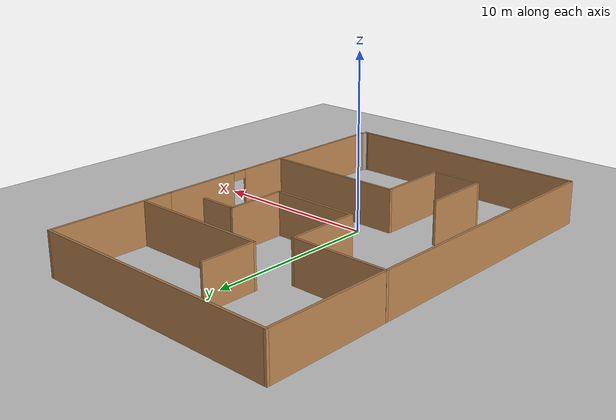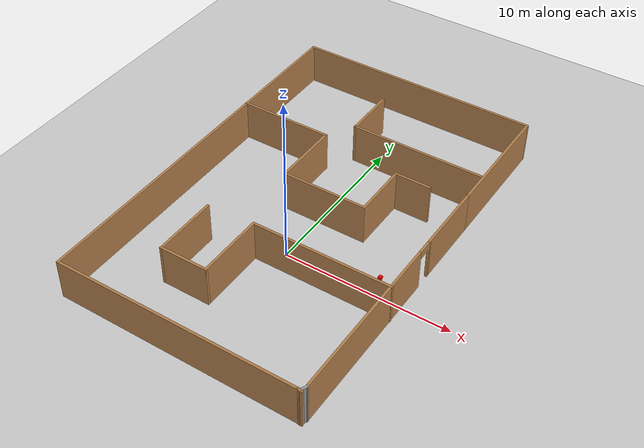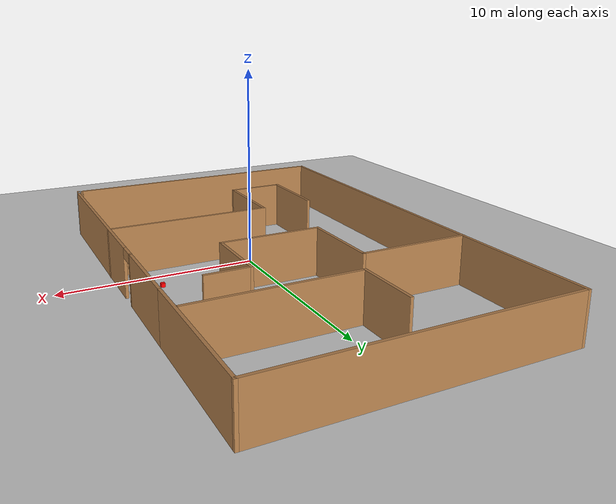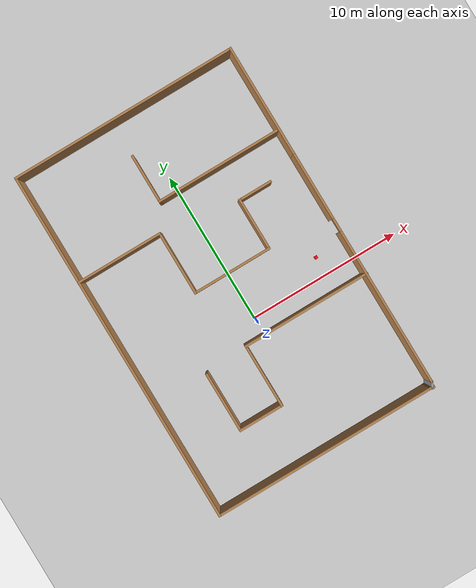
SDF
<sdf version="1.7">
 <world name="default">
  <light name="sun" type="directional">
   <pose>0 0 10 0 -0 0</pose>
   <diffuse>0.8 0.8 0.8 1</diffuse>
   <specular>0.2 0.2 0.2 1</specular>
   <attenuation>
    <range>1000</range>
    <constant>0.9</constant>
    <linear>0.01</linear>
    <quadratic>0.001</quadratic>
   </attenuation>
   <direction>-0.5 0.1 -0.9</direction>
   <spot><inner_angle>0</inner_angle><outer_angle>0</outer_angle><falloff>0</falloff></spot>
  </light>
  <model name="ground_plane">
   <static>1</static>
   <link name="link">
    <collision name="collision">
     <geometry><plane><normal>0 0 1</normal><size>100 100</size></plane></geometry>
     <surface><friction><ode><mu>100</mu><mu2>50</mu2></ode></friction></surface>
    </collision>
    <visual name="visual">
     <cast_shadows>0</cast_shadows>
     <geometry><plane><normal>0 0 1</normal><size>100 100</size></plane></geometry>
     <material>
      <script><uri>file://media/materials/scripts/gazebo.material</uri><name>Gazebo/Grey</name></script>
     </material>
    </visual>
   </link>
  </model>
  <gravity>0 0 -9.8</gravity>
  <magnetic_field>6e-06 2.3e-05 -4.2e-05</magnetic_field>
  <atmosphere type="adiabatic"/>
  <physics name="default_physics" default="0" type="ode">
   <max_step_size>0.001</max_step_size>
   <real_time_factor>1</real_time_factor>
   <real_time_update_rate>1000</real_time_update_rate>
  </physics>
  <scene><ambient>0.4 0.4 0.4 1</ambient><background>0.7 0.7 0.7 1</background><shadows>1</shadows></scene>
  <spherical_coordinates>
   <surface_model>EARTH_WGS84</surface_model>
   <latitude_deg>0</latitude_deg>
   <longitude_deg>0</longitude_deg>
   <elevation>0</elevation>
   <heading_deg>0</heading_deg>
  </spherical_coordinates>
  <model name="Untitled">
   <pose>-0.39034 2.78539 0 0 -0 0</pose>
   <link name="Wall_1">
    <collision name="Wall_1_Collision">
     <geometry><box><size>4.5 0.15 2.5</size></box></geometry>
     <pose>0 0 1.25 0 -0 0</pose>
    </collision>
    <visual name="Wall_1_Visual">
     <pose>0 0 1.25 0 -0 0</pose>
     <geometry><box><size>4.5 0.15 2.5</size></box></geometry>
     <material>
      <script><uri>file://media/materials/scripts/gazebo.material</uri><name>Gazebo/Wood</name></script>
      <ambient>1 1 1 1</ambient>
     </material>
     <meta><layer>0</layer></meta>
    </visual>
    <pose>7.4153 2.17534 0 0 -0 1.5708</pose>
   </link>
   <link name="Wall_11">
    <pose>7.4153 -5.67466 0 0 -0 -1.5708</pose>
    <visual name="Wall_11_Visual_0">
     <pose>-5.68799 0 1.25 0 -0 0</pose>
     <geometry><box><size>0.124016 0.15 2.5</size></box></geometry>
     <material>
      <script><uri>file://media/materials/scripts/gazebo.material</uri><name>Gazebo/Wood</name></script>
      <ambient>1 1 1 1</ambient>
     </material>
     <meta><layer>0</layer></meta>
    </visual>
    <collision name="Wall_11_Collision_0">
     <geometry><box><size>0.124016 0.15 2.5</size></box></geometry>
     <pose>-5.68799 0 1.25 0 -0 0</pose>
    </collision>
    <visual name="Wall_11_Visual_1">
     <pose>0.512008 0 1.25 0 -0 0</pose>
     <geometry><box><size>10.476 0.15 2.5</size></box></geometry>
     <material>
      <script><uri>file://media/materials/scripts/gazebo.material</uri><name>Gazebo/Wood</name></script>
      <ambient>1 1 1 1</ambient>
     </material>
     <meta><layer>0</layer></meta>
    </visual>
    <collision name="Wall_11_Collision_1">
     <geometry><box><size>10.476 0.15 2.5</size></box></geometry>
     <pose>0.512008 0 1.25 0 -0 0</pose>
    </collision>
    <visual name="Wall_11_Visual_2">
     <pose>-5.17598 0 2.25 0 -0 0</pose>
     <geometry><box><size>0.9 0.15 0.5</size></box></geometry>
     <material>
      <script><uri>file://media/materials/scripts/gazebo.material</uri><name>Gazebo/Wood</name></script>
      <ambient>1 1 1 1</ambient>
     </material>
     <meta><layer>0</layer></meta>
    </visual>
    <collision name="Wall_11_Collision_2">
     <geometry><box><size>0.9 0.15 0.5</size></box></geometry>
     <pose>-5.17598 0 2.25 0 -0 0</pose>
    </collision>
   </link>
   <link name="Wall_14">
    <collision name="Wall_14_Collision">
     <geometry><box><size>0.510184 0.15 2.5</size></box></geometry>
     <pose>0 0 1.25 0 -0 0</pose>
    </collision>
    <visual name="Wall_14_Visual">
     <pose>0 0 1.25 0 -0 0</pose>
     <geometry><box><size>0.510184 0.15 2.5</size></box></geometry>
     <material>
      <script><uri>file://media/materials/scripts/gazebo.material</uri><name>Gazebo/Grey</name></script>
      <ambient>1 1 1 1</ambient>
     </material>
     <meta><layer>0</layer></meta>
    </visual>
    <pose>7.33859 -11.5126 0 0 -0 -2.01077</pose>
   </link>
   <link name="Wall_16">
    <collision name="Wall_16_Collision">
     <geometry><box><size>8.25 0.15 2.5</size></box></geometry>
     <pose>0 0 1.25 0 -0 0</pose>
    </collision>
    <visual name="Wall_16_Visual">
     <pose>0 0 1.25 0 -0 0</pose>
     <geometry><box><size>8.25 0.15 2.5</size></box></geometry>
     <material>
      <script><uri>file://media/materials/scripts/gazebo.material</uri><name>Gazebo/Wood</name></script>
      <ambient>0.921569 0.807843 0.615686 1</ambient>
     </material>
     <meta><layer>0</layer></meta>
    </visual>
    <pose>3.20102 6.12739 0 0 -0 3.14159</pose>
   </link>
   <link name="Wall_17">
    <collision name="Wall_17_Collision">
     <geometry><box><size>3.25 0.15 2.5</size></box></geometry>
     <pose>0 0 1.25 0 -0 0</pose>
    </collision>
    <visual name="Wall_17_Visual">
     <pose>0 0 1.25 0 -0 0</pose>
     <geometry><box><size>3.25 0.15 2.5</size></box></geometry>
     <material>
      <script><uri>file://media/materials/scripts/gazebo.material</uri><name>Gazebo/Wood</name></script>
      <ambient>1 1 1 1</ambient>
     </material>
     <meta><layer>0</layer></meta>
    </visual>
    <pose>-0.848977 7.67739 0 0 -0 1.5708</pose>
   </link>
   <link name="Wall_19">
    <collision name="Wall_19_Collision">
     <geometry><box><size>8.5 0.15 2.5</size></box></geometry>
     <pose>0 0 1.25 0 -0 0</pose>
    </collision>
    <visual name="Wall_19_Visual">
     <pose>0 0 1.25 0 -0 0</pose>
     <geometry><box><size>8.5 0.15 2.5</size></box></geometry>
     <material>
      <script><uri>file://media/materials/scripts/gazebo.material</uri><name>Gazebo/Wood</name></script>
      <ambient>1 1 1 1</ambient>
     </material>
     <meta><layer>0</layer></meta>
    </visual>
    <pose>3.26107 -3.86503 0 0 -0 3.14159</pose>
   </link>
   <link name="Wall_2">
    <collision name="Wall_2_Collision">
     <geometry><box><size>7.5 0.15 2.5</size></box></geometry>
     <pose>0 0 1.25 0 -0 0</pose>
    </collision>
    <visual name="Wall_2_Visual">
     <pose>0 0 1.25 0 -0 0</pose>
     <geometry><box><size>7.5 0.15 2.5</size></box></geometry>
     <material>
      <script><uri>file://media/materials/scripts/gazebo.material</uri><name>Gazebo/Wood</name></script>
      <ambient>1 1 1 1</ambient>
     </material>
     <meta><layer>0</layer></meta>
    </visual>
    <pose>7.4153 8.02534 0 0 -0 1.5708</pose>
   </link>
   <link name="Wall_20">
    <collision name="Wall_20_Collision">
     <geometry><box><size>4.25 0.15 2.5</size></box></geometry>
     <pose>0 0 1.25 0 -0 0</pose>
    </collision>
    <visual name="Wall_20_Visual">
     <pose>0 0 1.25 0 -0 0</pose>
     <geometry><box><size>4.25 0.15 2.5</size></box></geometry>
     <material>
      <script><uri>file://media/materials/scripts/gazebo.material</uri><name>Gazebo/Wood</name></script>
      <ambient>1 1 1 1</ambient>
     </material>
     <meta><layer>0</layer></meta>
    </visual>
    <pose>-0.913933 -5.91503 0 0 -0 -1.5708</pose>
   </link>
   <link name="Wall_22">
    <collision name="Wall_22_Collision">
     <geometry><box><size>5.75 0.15 2.5</size></box></geometry>
     <pose>0 0 1.25 0 -0 0</pose>
    </collision>
    <visual name="Wall_22_Visual">
     <pose>0 0 1.25 0 -0 0</pose>
     <geometry><box><size>5.75 0.15 2.5</size></box></geometry>
     <material>
      <script><uri>file://media/materials/scripts/gazebo.material</uri><name>Gazebo/Wood</name></script>
      <ambient>1 1 1 1</ambient>
     </material>
     <meta><layer>0</layer></meta>
    </visual>
    <pose>-4.6401 4.48965 0 0 -0 0</pose>
   </link>
   <link name="Wall_23">
    <collision name="Wall_23_Collision">
     <geometry><box><size>4.25 0.15 2.5</size></box></geometry>
     <pose>0 0 1.25 0 -0 0</pose>
    </collision>
    <visual name="Wall_23_Visual">
     <pose>0 0 1.25 0 -0 0</pose>
     <geometry><box><size>4.25 0.15 2.5</size></box></geometry>
     <material>
      <script><uri>file://media/materials/scripts/gazebo.material</uri><name>Gazebo/Wood</name></script>
      <ambient>1 1 1 1</ambient>
     </material>
     <meta><layer>0</layer></meta>
    </visual>
    <pose>-1.8401 2.43966 0 0 -0 -1.5708</pose>
   </link>
   <link name="Wall_24">
    <collision name="Wall_24_Collision">
     <geometry><box><size>5.25 0.15 2.5</size></box></geometry>
     <pose>0 0 1.25 0 -0 0</pose>
    </collision>
    <visual name="Wall_24_Visual">
     <pose>0 0 1.25 0 -0 0</pose>
     <geometry><box><size>5.25 0.15 2.5</size></box></geometry>
     <material>
      <script><uri>file://media/materials/scripts/gazebo.material</uri><name>Gazebo/Wood</name></script>
      <ambient>1 1 1 1</ambient>
     </material>
     <meta><layer>0</layer></meta>
    </visual>
    <pose>0.709903 0.389655 0 0 -0 0</pose>
   </link>
   <link name="Wall_25">
    <collision name="Wall_25_Collision">
     <geometry><box><size>3.5 0.15 2.5</size></box></geometry>
     <pose>0 0 1.25 0 -0 0</pose>
    </collision>
    <visual name="Wall_25_Visual">
     <pose>0 0 1.25 0 -0 0</pose>
     <geometry><box><size>3.5 0.15 2.5</size></box></geometry>
     <material>
      <script><uri>file://media/materials/scripts/gazebo.material</uri><name>Gazebo/Wood</name></script>
      <ambient>1 1 1 1</ambient>
     </material>
     <meta><layer>0</layer></meta>
    </visual>
    <pose>3.2599 2.06466 0 0 -0 1.5708</pose>
   </link>
   <link name="Wall_26">
    <collision name="Wall_26_Collision">
     <geometry><box><size>2.25 0.15 2.5</size></box></geometry>
     <pose>0 0 1.25 0 -0 0</pose>
    </collision>
    <visual name="Wall_26_Visual">
     <pose>0 0 1.25 0 -0 0</pose>
     <geometry><box><size>2.25 0.15 2.5</size></box></geometry>
     <material>
      <script><uri>file://media/materials/scripts/gazebo.material</uri><name>Gazebo/Wood</name></script>
      <ambient>1 1 1 1</ambient>
     </material>
     <meta><layer>0</layer></meta>
    </visual>
    <pose>4.3099 3.73965 0 0 -0 0</pose>
   </link>
   <link name="Wall_28">
    <collision name="Wall_28_Collision">
     <geometry><box><size>3 0.15 2.5</size></box></geometry>
     <pose>0 0 1.25 0 -0 0</pose>
    </collision>
    <visual name="Wall_28_Visual">
     <pose>0 0 1.25 0 -0 0</pose>
     <geometry><box><size>3 0.15 2.5</size></box></geometry>
     <material>
      <script><uri>file://media/materials/scripts/gazebo.material</uri><name>Gazebo/Wood</name></script>
      <ambient>1 1 1 1</ambient>
     </material>
     <meta><layer>0</layer></meta>
    </visual>
    <pose>-2.33893 -7.96503 0 0 -0 3.14159</pose>
   </link>
   <link name="Wall_29">
    <collision name="Wall_29_Collision">
     <geometry><box><size>4 0.15 2.5</size></box></geometry>
     <pose>0 0 1.25 0 -0 0</pose>
    </collision>
    <visual name="Wall_29_Visual">
     <pose>0 0 1.25 0 -0 0</pose>
     <geometry><box><size>4 0.15 2.5</size></box></geometry>
     <material>
      <script><uri>file://media/materials/scripts/gazebo.material</uri><name>Gazebo/Wood</name></script>
      <ambient>1 1 1 1</ambient>
     </material>
     <meta><layer>0</layer></meta>
    </visual>
    <pose>-3.76393 -6.04003 0 0 -0 1.5708</pose>
   </link>
   <link name="Wall_3">
    <collision name="Wall_3_Collision">
     <geometry><box><size>15 0.15 2.5</size></box></geometry>
     <pose>0 0 1.25 0 -0 0</pose>
    </collision>
    <visual name="Wall_3_Visual">
     <pose>0 0 1.25 0 -0 0</pose>
     <geometry><box><size>15 0.15 2.5</size></box></geometry>
     <material>
      <script><uri>file://media/materials/scripts/gazebo.material</uri><name>Gazebo/Wood</name></script>
      <ambient>0.921569 0.807843 0.615686 1</ambient>
     </material>
     <meta><layer>0</layer></meta>
    </visual>
    <pose>-0.009703 11.7003 0 0 -0 3.14159</pose>
   </link>
   <link name="Wall_4">
    <collision name="Wall_4_Collision">
     <geometry><box><size>23.5 0.15 2.5</size></box></geometry>
     <pose>0 0 1.25 0 -0 0</pose>
    </collision>
    <visual name="Wall_4_Visual">
     <pose>0 0 1.25 0 -0 0</pose>
     <geometry><box><size>23.5 0.15 2.5</size></box></geometry>
     <material>
      <script><uri>file://media/materials/scripts/gazebo.material</uri><name>Gazebo/Wood</name></script>
      <ambient>1 1 1 1</ambient>
     </material>
     <meta><layer>0</layer></meta>
    </visual>
    <pose>-7.4347 0.025341 0 0 -0 -1.5708</pose>
   </link>
   <link name="Wall_5">
    <collision name="Wall_5_Collision">
     <geometry><box><size>14.75 0.15 2.5</size></box></geometry>
     <pose>0 0 1.25 0 -0 0</pose>
    </collision>
    <visual name="Wall_5_Visual">
     <pose>0 0 1.25 0 -0 0</pose>
     <geometry><box><size>14.75 0.15 2.5</size></box></geometry>
     <material>
      <script><uri>file://media/materials/scripts/gazebo.material</uri><name>Gazebo/Wood</name></script>
      <ambient>1 1 1 1</ambient>
     </material>
     <meta><layer>0</layer></meta>
    </visual>
    <pose>-0.134703 -11.6497 0 0 -0 0</pose>
   </link>
   <link name="Wall_6">
    <collision name="Wall_6_Collision">
     <geometry><box><size>0.25 0.15 2.5</size></box></geometry>
     <pose>0 0 1.25 0 -0 0</pose>
    </collision>
    <visual name="Wall_6_Visual">
     <pose>0 0 1.25 0 -0 0</pose>
     <geometry><box><size>0.25 0.15 2.5</size></box></geometry>
     <material>
      <script><uri>file://media/materials/scripts/gazebo.material</uri><name>Gazebo/Wood</name></script>
      <ambient>1 1 1 1</ambient>
     </material>
     <meta><layer>0</layer></meta>
    </visual>
    <pose>7.21359 -11.6626 0 0 -0 -0.261799</pose>
   </link>
   <link name="Wall_7">
    <collision name="Wall_7_Collision">
     <geometry><box><size>0.25 0.15 2.5</size></box></geometry>
     <pose>0 0 1.25 0 -0 0</pose>
    </collision>
    <visual name="Wall_7_Visual">
     <pose>0 0 1.25 0 -0 0</pose>
     <geometry><box><size>0.25 0.15 2.5</size></box></geometry>
     <material>
      <script><uri>file://media/materials/scripts/gazebo.material</uri><name>Gazebo/Wood</name></script>
      <ambient>1 1 1 1</ambient>
     </material>
     <meta><layer>0</layer></meta>
    </visual>
    <pose>7.31189 -11.6755 0 0 -0 0</pose>
   </link>
   <static>1</static>
  </model>
  <model name="unit_box_red_0">
   <link name="link">
    <inertial>
     <mass>1</mass>
     <inertia>
      <ixx>0.166667</ixx>
      <ixy>0</ixy>
      <ixz>0</ixz>
      <iyy>0.166667</iyy>
      <iyz>0</iyz>
      <izz>0.166667</izz>
     </inertia>
    </inertial>
    <visual name="visual">
     <geometry><box><size>0.2 0.2 0.2</size></box></geometry>
     <material>
      <script><name>Gazebo/Grey</name><uri>file://media/materials/scripts/gazebo.material</uri></script>
      <shader type="pixel"><normal_map>__default__</normal_map></shader>
      <ambient>1 0 0 1</ambient>
      <diffuse>1 0 0 1</diffuse>
      <specular>1 0.01 0.01 1</specular>
      <emissive>1 0 0 1</emissive>
     </material>
     <pose>0 0 -0.4 0 -0 0</pose>
    </visual>
    <collision name="collision">
     <pose>0 0 -0.4 0 -0 0</pose>
     <geometry><box><size>0.2 0.2 0.2</size></box></geometry>
     <surface>
      <friction>
       <ode><mu>1</mu><mu2>1</mu2><fdir1>0 0 0</fdir1><slip1>0</slip1><slip2>0</slip2></ode>
       <torsional>
        <coefficient>1</coefficient>
        <patch_radius>0</patch_radius>
        <surface_radius>0</surface_radius>
        <use_patch_radius>1</use_patch_radius>
        <ode><slip>0</slip></ode>
       </torsional>
      </friction>
      <bounce><restitution_coefficient>0</restitution_coefficient><threshold>1e+06</threshold></bounce>
      <contact>
       <collide_without_contact>0</collide_without_contact>
       <collide_without_contact_bitmask>1</collide_without_contact_bitmask>
       <collide_bitmask>1</collide_bitmask>
       <ode>
        <soft_cfm>0</soft_cfm>
        <soft_erp>0.2</soft_erp>
        <kp>1e+13</kp>
        <kd>1</kd>
        <max_vel>0.01</max_vel>
        <min_depth>0</min_depth>
       </ode>
       <bullet>
        <split_impulse>1</split_impulse>
        <split_impulse_penetration_threshold>-0.01</split_impulse_penetration_threshold>
        <soft_cfm>0</soft_cfm>
        <soft_erp>0.2</soft_erp>
        <kp>1e+13</kp>
        <kd>1</kd>
       </bullet>
      </contact>
     </surface>
    </collision>
   </link>
   <static>0</static>
   <pose>5.14901 1.22498 0.5 -1e-06 -2e-06 -0.003548</pose>
  </model>
 </world>
</sdf>
